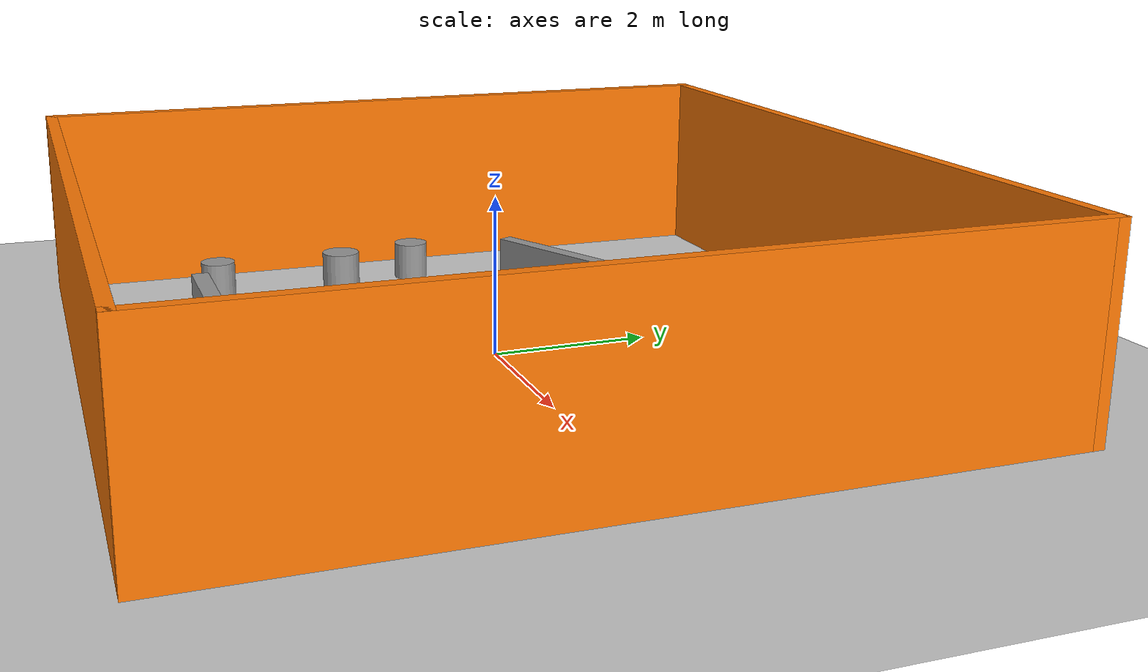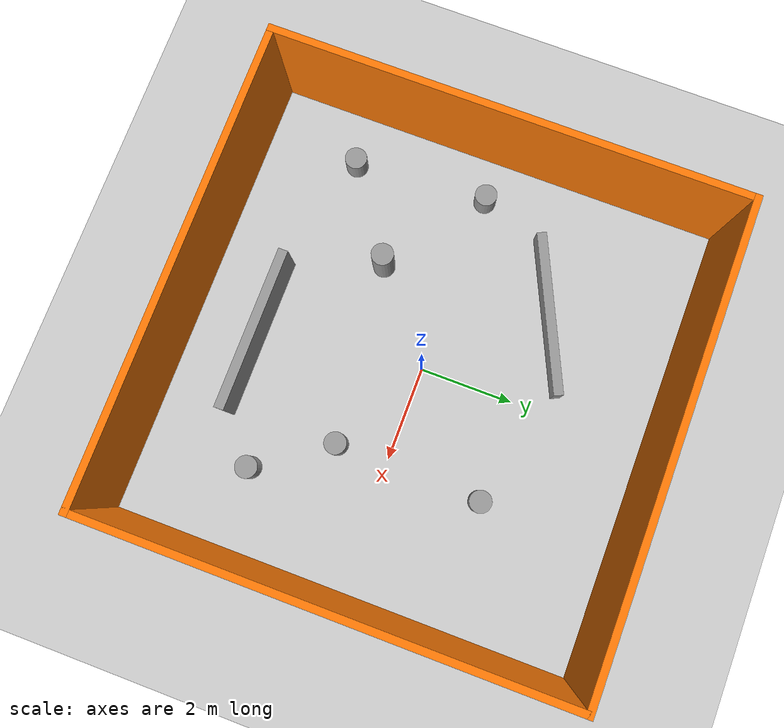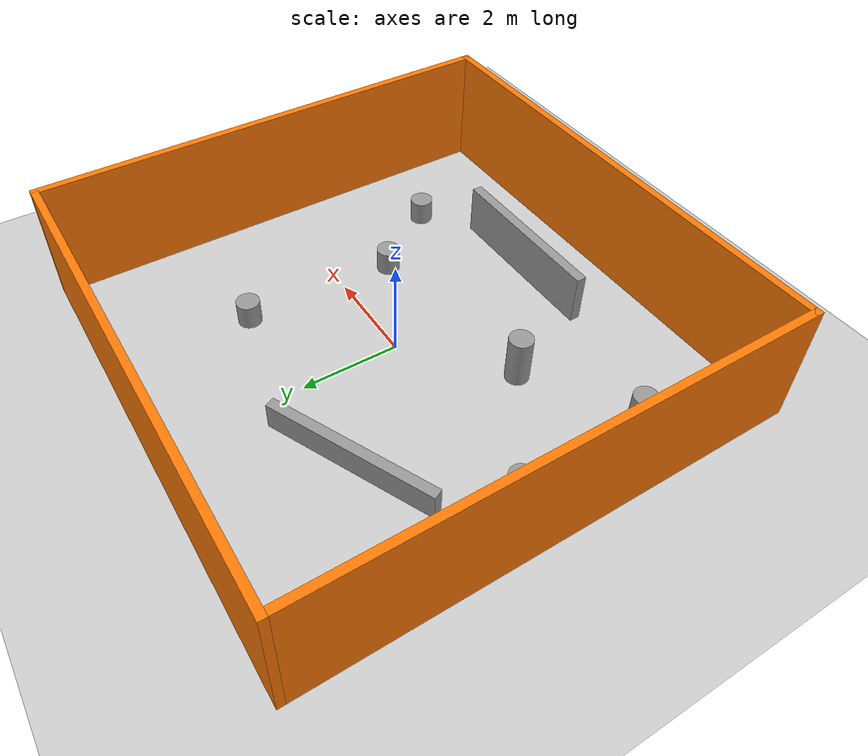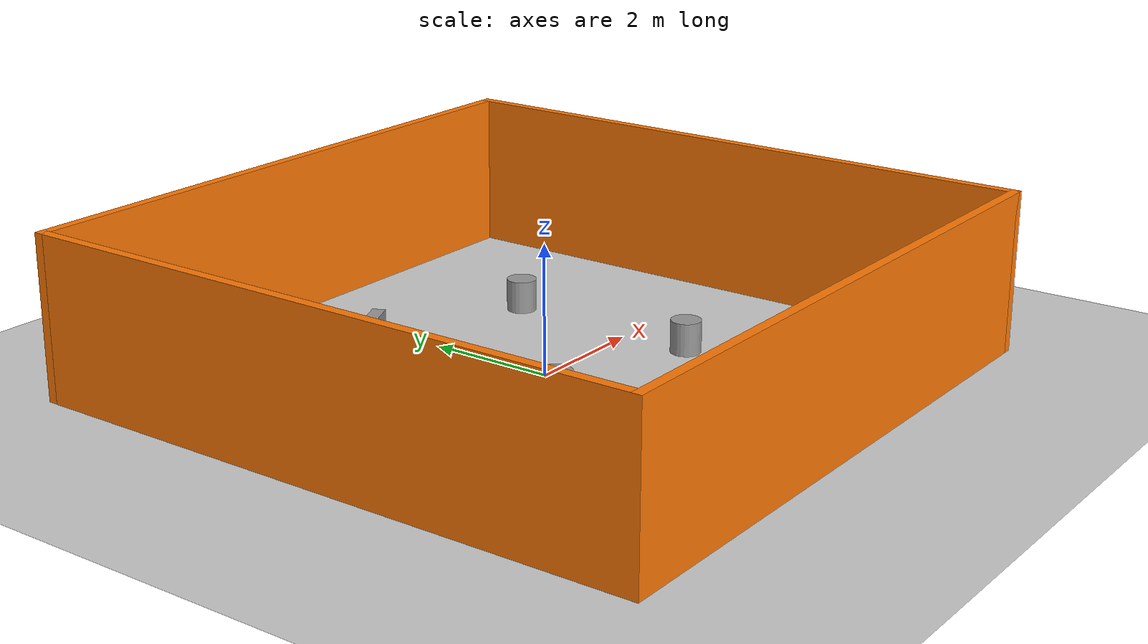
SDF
<sdf version="1.6">
 <world name="default">
  <light name="sun" type="directional">
   <pose>0 0 10 0 -0 0</pose>
   <diffuse>0.8 0.8 0.8 1</diffuse>
   <specular>0.2 0.2 0.2 1</specular>
   <attenuation>
    <range>1000</range>
    <constant>0.9</constant>
    <linear>0.01</linear>
    <quadratic>0.001</quadratic>
   </attenuation>
   <direction>-0.5 0.1 -0.9</direction>
  </light>
  <model name="ground_plane">
   <static>1</static>
   <link name="link">
    <collision name="collision">
     <geometry><plane><normal>0 0 1</normal><size>100 100</size></plane></geometry>
     <surface>
      <contact><collide_bitmask>65535</collide_bitmask></contact>
      <friction><ode><mu>100</mu><mu2>50</mu2></ode></friction>
     </surface>
    </collision>
    <visual name="visual">
     <cast_shadows>0</cast_shadows>
     <geometry><plane><normal>0 0 1</normal><size>100 100</size></plane></geometry>
     <material>
      <script><uri>file://media/materials/scripts/gazebo.material</uri><name>Gazebo/Grey</name></script>
     </material>
    </visual>
   </link>
  </model>
  <gravity>0 0 -9.8</gravity>
  <magnetic_field>6e-06 2.3e-05 -4.2e-05</magnetic_field>
  <atmosphere type="adiabatic"/>
  <physics name="default_physics" default="0" type="ode">
   <max_step_size>0.001</max_step_size>
   <real_time_factor>1</real_time_factor>
   <real_time_update_rate>1000</real_time_update_rate>
  </physics>
  <scene><ambient>0.4 0.4 0.4 1</ambient><background>0.7 0.7 0.7 1</background><shadows>1</shadows></scene>
  <audio><device>default</device></audio>
  <spherical_coordinates>
   <surface_model>EARTH_WGS84</surface_model>
   <latitude_deg>0</latitude_deg>
   <longitude_deg>0</longitude_deg>
   <elevation>0</elevation>
   <heading_deg>0</heading_deg>
  </spherical_coordinates>
  <model name="5x5">
   <pose>0.010058 -0.011692 0 0 -0 0</pose>
   <link name="Wall_0">
    <collision name="Wall_0_Collision">
     <geometry><box><size>10 0.15 2.5</size></box></geometry>
     <pose>0 0 1.25 0 -0 0</pose>
    </collision>
    <visual name="Wall_0_Visual">
     <pose>0 0 1.25 0 -0 0</pose>
     <geometry><box><size>10 0.15 2.5</size></box></geometry>
     <material>
      <script><uri>file://media/materials/scripts/gazebo.material</uri><name>Gazebo/Grey</name></script>
      <ambient>0.996078 0.47451 0.0196078 1</ambient>
     </material>
     <meta><layer>0</layer></meta>
    </visual>
    <pose>-0 -4.925 0 0 -0 0</pose>
   </link>
   <link name="Wall_2">
    <collision name="Wall_2_Collision">
     <geometry><box><size>10 0.15 2.5</size></box></geometry>
     <pose>0 0 1.25 0 -0 0</pose>
    </collision>
    <visual name="Wall_2_Visual">
     <pose>0 0 1.25 0 -0 0</pose>
     <geometry><box><size>10 0.15 2.5</size></box></geometry>
     <material>
      <script><uri>file://media/materials/scripts/gazebo.material</uri><name>Gazebo/Grey</name></script>
      <ambient>0.996078 0.47451 0.0196078 1</ambient>
     </material>
     <meta><layer>0</layer></meta>
    </visual>
    <pose>4.925 -0 0 0 -0 1.5708</pose>
   </link>
   <link name="Wall_3">
    <collision name="Wall_3_Collision">
     <geometry><box><size>10 0.15 2.5</size></box></geometry>
     <pose>0 0 1.25 0 -0 0</pose>
    </collision>
    <visual name="Wall_3_Visual">
     <pose>0 0 1.25 0 -0 0</pose>
     <geometry><box><size>10 0.15 2.5</size></box></geometry>
     <material>
      <script><uri>file://media/materials/scripts/gazebo.material</uri><name>Gazebo/Grey</name></script>
      <ambient>0.996078 0.47451 0.0196078 1</ambient>
     </material>
     <meta><layer>0</layer></meta>
    </visual>
    <pose>-0 4.925 0 0 -0 3.14159</pose>
   </link>
   <link name="Wall_4">
    <collision name="Wall_4_Collision">
     <geometry><box><size>10 0.15 2.5</size></box></geometry>
     <pose>0 0 1.25 0 -0 0</pose>
    </collision>
    <visual name="Wall_4_Visual">
     <pose>0 0 1.25 0 -0 0</pose>
     <geometry><box><size>10 0.15 2.5</size></box></geometry>
     <material>
      <script><uri>file://media/materials/scripts/gazebo.material</uri><name>Gazebo/Grey</name></script>
      <ambient>0.996078 0.47451 0.0196078 1</ambient>
     </material>
     <meta><layer>0</layer></meta>
    </visual>
    <pose>-4.925 -0 0 0 -0 -1.5708</pose>
   </link>
   <static>1</static>
  </model>
  <model name="zylinder">
   <link name="link_0">
    <inertial>
     <mass>0.223602</mass>
     <inertia>
      <ixx>0.0217583</ixx>
      <ixy>0</ixy>
      <ixz>0</ixz>
      <iyy>0.0217583</iyy>
      <iyz>0</iyz>
      <izz>0.00624957</izz>
     </inertia>
    </inertial>
    <pose>-1e-06 5e-06 0 0 -0 0</pose>
    <visual name="visual">
     <geometry><cylinder><radius>0.23643</radius><length>1</length></cylinder></geometry>
     <material>
      <lighting>1</lighting>
      <script><uri>file://media/materials/scripts/gazebo.material</uri><name>Gazebo/Grey</name></script>
     </material>
    </visual>
    <collision name="collision">
     <geometry><cylinder><radius>0.23643</radius><length>1</length></cylinder></geometry>
     <surface>
      <friction>
       <ode><mu>1</mu><mu2>1</mu2><fdir1>0 0 0</fdir1><slip1>0</slip1><slip2>0</slip2></ode>
       <torsional>
        <coefficient>1</coefficient>
        <patch_radius>0</patch_radius>
        <surface_radius>0</surface_radius>
        <use_patch_radius>1</use_patch_radius>
        <ode><slip>0</slip></ode>
       </torsional>
      </friction>
      <bounce><restitution_coefficient>0</restitution_coefficient><threshold>1e+06</threshold></bounce>
      <contact>
       <collide_without_contact>0</collide_without_contact>
       <collide_without_contact_bitmask>1</collide_without_contact_bitmask>
       <collide_bitmask>1</collide_bitmask>
       <ode>
        <soft_cfm>0</soft_cfm>
        <soft_erp>0.2</soft_erp>
        <kp>1e+13</kp>
        <kd>1</kd>
        <max_vel>0.01</max_vel>
        <min_depth>0</min_depth>
       </ode>
       <bullet>
        <split_impulse>1</split_impulse>
        <split_impulse_penetration_threshold>-0.01</split_impulse_penetration_threshold>
        <soft_cfm>0</soft_cfm>
        <soft_erp>0.2</soft_erp>
        <kp>1e+13</kp>
        <kd>1</kd>
       </bullet>
      </contact>
     </surface>
    </collision>
   </link>
   <static>0</static>
   <pose>-1.81624 -1.5293 0.5 0 -0 0</pose>
  </model>
  <model name="zylinder_0">
   <link name="link_0">
    <inertial>
     <mass>0.223602</mass>
     <inertia>
      <ixx>0.0217583</ixx>
      <ixy>0</ixy>
      <ixz>0</ixz>
      <iyy>0.0217583</iyy>
      <iyz>0</iyz>
      <izz>0.00624957</izz>
     </inertia>
    </inertial>
    <pose>-1e-06 5e-06 0 0 -0 0</pose>
    <visual name="visual">
     <geometry><cylinder><radius>0.23643</radius><length>1</length></cylinder></geometry>
     <material>
      <lighting>1</lighting>
      <script><uri>file://media/materials/scripts/gazebo.material</uri><name>Gazebo/Grey</name></script>
     </material>
    </visual>
    <collision name="collision">
     <geometry><cylinder><radius>0.23643</radius><length>1</length></cylinder></geometry>
     <surface>
      <friction>
       <ode><mu>1</mu><mu2>1</mu2><fdir1>0 0 0</fdir1><slip1>0</slip1><slip2>0</slip2></ode>
       <torsional>
        <coefficient>1</coefficient>
        <patch_radius>0</patch_radius>
        <surface_radius>0</surface_radius>
        <use_patch_radius>1</use_patch_radius>
        <ode><slip>0</slip></ode>
       </torsional>
      </friction>
      <bounce><restitution_coefficient>0</restitution_coefficient><threshold>1e+06</threshold></bounce>
      <contact>
       <collide_without_contact>0</collide_without_contact>
       <collide_without_contact_bitmask>1</collide_without_contact_bitmask>
       <collide_bitmask>1</collide_bitmask>
       <ode>
        <soft_cfm>0</soft_cfm>
        <soft_erp>0.2</soft_erp>
        <kp>1e+13</kp>
        <kd>1</kd>
        <max_vel>0.01</max_vel>
        <min_depth>0</min_depth>
       </ode>
       <bullet>
        <split_impulse>1</split_impulse>
        <split_impulse_penetration_threshold>-0.01</split_impulse_penetration_threshold>
        <soft_cfm>0</soft_cfm>
        <soft_erp>0.2</soft_erp>
        <kp>1e+13</kp>
        <kd>1</kd>
       </bullet>
      </contact>
     </surface>
    </collision>
   </link>
   <static>0</static>
   <pose>2.0889 -1.09581 0 0 -0 0</pose>
  </model>
  <model name="long_wall">
   <link name="link_1">
    <inertial>
     <mass>0.786783</mass>
     <inertia>
      <ixx>0.0806824</ixx>
      <ixy>0</ixy>
      <ixz>0</ixz>
      <iyy>0.862898</iyy>
      <iyz>0</iyz>
      <izz>0.787924</izz>
     </inertia>
    </inertial>
    <pose>0 3e-06 0 0 -0 0</pose>
    <visual name="visual">
     <geometry><box><size>3.46033 0.208634 1.08951</size></box></geometry>
     <material>
      <lighting>1</lighting>
      <script><uri>file://media/materials/scripts/gazebo.material</uri><name>Gazebo/Grey</name></script>
     </material>
    </visual>
    <collision name="collision">
     <geometry><box><size>3.46033 0.208634 1.08951</size></box></geometry>
     <surface>
      <friction>
       <ode><mu>1</mu><mu2>1</mu2><fdir1>0 0 0</fdir1><slip1>0</slip1><slip2>0</slip2></ode>
       <torsional>
        <coefficient>1</coefficient>
        <patch_radius>0</patch_radius>
        <surface_radius>0</surface_radius>
        <use_patch_radius>1</use_patch_radius>
        <ode><slip>0</slip></ode>
       </torsional>
      </friction>
      <bounce><restitution_coefficient>0</restitution_coefficient><threshold>1e+06</threshold></bounce>
      <contact>
       <collide_without_contact>0</collide_without_contact>
       <collide_without_contact_bitmask>1</collide_without_contact_bitmask>
       <collide_bitmask>1</collide_bitmask>
       <ode>
        <soft_cfm>0</soft_cfm>
        <soft_erp>0.2</soft_erp>
        <kp>1e+13</kp>
        <kd>1</kd>
        <max_vel>0.01</max_vel>
        <min_depth>0</min_depth>
       </ode>
       <bullet>
        <split_impulse>1</split_impulse>
        <split_impulse_penetration_threshold>-0.01</split_impulse_penetration_threshold>
        <soft_cfm>0</soft_cfm>
        <soft_erp>0.2</soft_erp>
        <kp>1e+13</kp>
        <kd>1</kd>
       </bullet>
      </contact>
     </surface>
    </collision>
   </link>
   <static>0</static>
   <pose>0.537496 -3.44723 0.5 0 -0 0</pose>
  </model>
  <model name="long_wall_0">
   <link name="link_1">
    <inertial>
     <mass>0.786783</mass>
     <inertia>
      <ixx>0.0806824</ixx>
      <ixy>0</ixy>
      <ixz>0</ixz>
      <iyy>0.862898</iyy>
      <iyz>0</iyz>
      <izz>0.787924</izz>
     </inertia>
    </inertial>
    <pose>0 3e-06 0 0 -0 0</pose>
    <visual name="visual">
     <geometry><box><size>3.46033 0.208634 1.08951</size></box></geometry>
     <material>
      <lighting>1</lighting>
      <script><uri>file://media/materials/scripts/gazebo.material</uri><name>Gazebo/Grey</name></script>
     </material>
    </visual>
    <collision name="collision">
     <geometry><box><size>3.46033 0.208634 1.08951</size></box></geometry>
     <surface>
      <friction>
       <ode><mu>1</mu><mu2>1</mu2><fdir1>0 0 0</fdir1><slip1>0</slip1><slip2>0</slip2></ode>
       <torsional>
        <coefficient>1</coefficient>
        <patch_radius>0</patch_radius>
        <surface_radius>0</surface_radius>
        <use_patch_radius>1</use_patch_radius>
        <ode><slip>0</slip></ode>
       </torsional>
      </friction>
      <bounce><restitution_coefficient>0</restitution_coefficient><threshold>1e+06</threshold></bounce>
      <contact>
       <collide_without_contact>0</collide_without_contact>
       <collide_without_contact_bitmask>1</collide_without_contact_bitmask>
       <collide_bitmask>1</collide_bitmask>
       <ode>
        <soft_cfm>0</soft_cfm>
        <soft_erp>0.2</soft_erp>
        <kp>1e+13</kp>
        <kd>1</kd>
        <max_vel>0.01</max_vel>
        <min_depth>0</min_depth>
       </ode>
       <bullet>
        <split_impulse>1</split_impulse>
        <split_impulse_penetration_threshold>-0.01</split_impulse_penetration_threshold>
        <soft_cfm>0</soft_cfm>
        <soft_erp>0.2</soft_erp>
        <kp>1e+13</kp>
        <kd>1</kd>
       </bullet>
      </contact>
     </surface>
    </collision>
   </link>
   <static>0</static>
   <pose>-1.97063 2.10756 0 0 -0 0.435453</pose>
  </model>
  <model name="zylinder_1">
   <link name="link_0">
    <inertial>
     <mass>0.223602</mass>
     <inertia>
      <ixx>0.0217583</ixx>
      <ixy>0</ixy>
      <ixz>0</ixz>
      <iyy>0.0217583</iyy>
      <iyz>0</iyz>
      <izz>0.00624957</izz>
     </inertia>
    </inertial>
    <pose>-1e-06 5e-06 0 0 -0 0</pose>
    <visual name="visual">
     <geometry><cylinder><radius>0.23643</radius><length>1</length></cylinder></geometry>
     <material>
      <lighting>1</lighting>
      <script><uri>file://media/materials/scripts/gazebo.material</uri><name>Gazebo/Grey</name></script>
     </material>
    </visual>
    <collision name="collision">
     <geometry><cylinder><radius>0.23643</radius><length>1</length></cylinder></geometry>
     <surface>
      <friction>
       <ode><mu>1</mu><mu2>1</mu2><fdir1>0 0 0</fdir1><slip1>0</slip1><slip2>0</slip2></ode>
       <torsional>
        <coefficient>1</coefficient>
        <patch_radius>0</patch_radius>
        <surface_radius>0</surface_radius>
        <use_patch_radius>1</use_patch_radius>
        <ode><slip>0</slip></ode>
       </torsional>
      </friction>
      <bounce><restitution_coefficient>0</restitution_coefficient><threshold>1e+06</threshold></bounce>
      <contact>
       <collide_without_contact>0</collide_without_contact>
       <collide_without_contact_bitmask>1</collide_without_contact_bitmask>
       <collide_bitmask>1</collide_bitmask>
       <ode>
        <soft_cfm>0</soft_cfm>
        <soft_erp>0.2</soft_erp>
        <kp>1e+13</kp>
        <kd>1</kd>
        <max_vel>0.01</max_vel>
        <min_depth>0</min_depth>
       </ode>
       <bullet>
        <split_impulse>1</split_impulse>
        <split_impulse_penetration_threshold>-0.01</split_impulse_penetration_threshold>
        <soft_cfm>0</soft_cfm>
        <soft_erp>0.2</soft_erp>
        <kp>1e+13</kp>
        <kd>1</kd>
       </bullet>
      </contact>
     </surface>
    </collision>
   </link>
   <static>0</static>
   <pose>2.16566 2.06963 0 0 -0 0</pose>
  </model>
  <model name="zylinder_2">
   <link name="link_0">
    <inertial>
     <mass>0.223602</mass>
     <inertia>
      <ixx>0.0217583</ixx>
      <ixy>0</ixy>
      <ixz>0</ixz>
      <iyy>0.0217583</iyy>
      <iyz>0</iyz>
      <izz>0.00624957</izz>
     </inertia>
    </inertial>
    <pose>-1e-06 5e-06 0 0 -0 0</pose>
    <visual name="visual">
     <geometry><cylinder><radius>0.23643</radius><length>1</length></cylinder></geometry>
     <material>
      <lighting>1</lighting>
      <script><uri>file://media/materials/scripts/gazebo.material</uri><name>Gazebo/Grey</name></script>
     </material>
    </visual>
    <collision name="collision">
     <geometry><cylinder><radius>0.23643</radius><length>1</length></cylinder></geometry>
     <surface>
      <friction>
       <ode><mu>1</mu><mu2>1</mu2><fdir1>0 0 0</fdir1><slip1>0</slip1><slip2>0</slip2></ode>
       <torsional>
        <coefficient>1</coefficient>
        <patch_radius>0</patch_radius>
        <surface_radius>0</surface_radius>
        <use_patch_radius>1</use_patch_radius>
        <ode><slip>0</slip></ode>
       </torsional>
      </friction>
      <bounce><restitution_coefficient>0</restitution_coefficient><threshold>1e+06</threshold></bounce>
      <contact>
       <collide_without_contact>0</collide_without_contact>
       <collide_without_contact_bitmask>1</collide_without_contact_bitmask>
       <collide_bitmask>1</collide_bitmask>
       <ode>
        <soft_cfm>0</soft_cfm>
        <soft_erp>0.2</soft_erp>
        <kp>1e+13</kp>
        <kd>1</kd>
        <max_vel>0.01</max_vel>
        <min_depth>0</min_depth>
       </ode>
       <bullet>
        <split_impulse>1</split_impulse>
        <split_impulse_penetration_threshold>-0.01</split_impulse_penetration_threshold>
        <soft_cfm>0</soft_cfm>
        <soft_erp>0.2</soft_erp>
        <kp>1e+13</kp>
        <kd>1</kd>
       </bullet>
      </contact>
     </surface>
    </collision>
   </link>
   <static>0</static>
   <pose>-3.91562 0.007169 0 0 -0 0</pose>
  </model>
  <model name="zylinder_3">
   <link name="link_0">
    <inertial>
     <mass>0.223602</mass>
     <inertia>
      <ixx>0.0217583</ixx>
      <ixy>0</ixy>
      <ixz>0</ixz>
      <iyy>0.0217583</iyy>
      <iyz>0</iyz>
      <izz>0.00624957</izz>
     </inertia>
    </inertial>
    <pose>-1e-06 5e-06 0 0 -0 0</pose>
    <visual name="visual">
     <geometry><cylinder><radius>0.23643</radius><length>1</length></cylinder></geometry>
     <material>
      <lighting>1</lighting>
      <script><uri>file://media/materials/scripts/gazebo.material</uri><name>Gazebo/Grey</name></script>
     </material>
    </visual>
    <collision name="collision">
     <geometry><cylinder><radius>0.23643</radius><length>1</length></cylinder></geometry>
     <surface>
      <friction>
       <ode><mu>1</mu><mu2>1</mu2><fdir1>0 0 0</fdir1><slip1>0</slip1><slip2>0</slip2></ode>
       <torsional>
        <coefficient>1</coefficient>
        <patch_radius>0</patch_radius>
        <surface_radius>0</surface_radius>
        <use_patch_radius>1</use_patch_radius>
        <ode><slip>0</slip></ode>
       </torsional>
      </friction>
      <bounce><restitution_coefficient>0</restitution_coefficient><threshold>1e+06</threshold></bounce>
      <contact>
       <collide_without_contact>0</collide_without_contact>
       <collide_without_contact_bitmask>1</collide_without_contact_bitmask>
       <collide_bitmask>1</collide_bitmask>
       <ode>
        <soft_cfm>0</soft_cfm>
        <soft_erp>0.2</soft_erp>
        <kp>1e+13</kp>
        <kd>1</kd>
        <max_vel>0.01</max_vel>
        <min_depth>0</min_depth>
       </ode>
       <bullet>
        <split_impulse>1</split_impulse>
        <split_impulse_penetration_threshold>-0.01</split_impulse_penetration_threshold>
        <soft_cfm>0</soft_cfm>
        <soft_erp>0.2</soft_erp>
        <kp>1e+13</kp>
        <kd>1</kd>
       </bullet>
      </contact>
     </surface>
    </collision>
   </link>
   <static>0</static>
   <pose>-3.72178 -2.87696 0 0 -0 0</pose>
  </model>
  <model name="zylinder_4">
   <link name="link_0">
    <inertial>
     <mass>0.223602</mass>
     <inertia>
      <ixx>0.0217583</ixx>
      <ixy>0</ixy>
      <ixz>0</ixz>
      <iyy>0.0217583</iyy>
      <iyz>0</iyz>
      <izz>0.00624957</izz>
     </inertia>
    </inertial>
    <pose>-1e-06 5e-06 0 0 -0 0</pose>
    <visual name="visual">
     <geometry><cylinder><radius>0.23643</radius><length>1</length></cylinder></geometry>
     <material>
      <lighting>1</lighting>
      <script><uri>file://media/materials/scripts/gazebo.material</uri><name>Gazebo/Grey</name></script>
     </material>
    </visual>
    <collision name="collision">
     <geometry><cylinder><radius>0.23643</radius><length>1</length></cylinder></geometry>
     <surface>
      <friction>
       <ode><mu>1</mu><mu2>1</mu2><fdir1>0 0 0</fdir1><slip1>0</slip1><slip2>0</slip2></ode>
       <torsional>
        <coefficient>1</coefficient>
        <patch_radius>0</patch_radius>
        <surface_radius>0</surface_radius>
        <use_patch_radius>1</use_patch_radius>
        <ode><slip>0</slip></ode>
       </torsional>
      </friction>
      <bounce><restitution_coefficient>0</restitution_coefficient><threshold>1e+06</threshold></bounce>
      <contact>
       <collide_without_contact>0</collide_without_contact>
       <collide_without_contact_bitmask>1</collide_without_contact_bitmask>
       <collide_bitmask>1</collide_bitmask>
       <ode>
        <soft_cfm>0</soft_cfm>
        <soft_erp>0.2</soft_erp>
        <kp>1e+13</kp>
        <kd>1</kd>
        <max_vel>0.01</max_vel>
        <min_depth>0</min_depth>
       </ode>
       <bullet>
        <split_impulse>1</split_impulse>
        <split_impulse_penetration_threshold>-0.01</split_impulse_penetration_threshold>
        <soft_cfm>0</soft_cfm>
        <soft_erp>0.2</soft_erp>
        <kp>1e+13</kp>
        <kd>1</kd>
       </bullet>
      </contact>
     </surface>
    </collision>
   </link>
   <static>0</static>
   <pose>3.1622 -2.61305 0 0 -0 0</pose>
  </model>
 </world>
</sdf>
